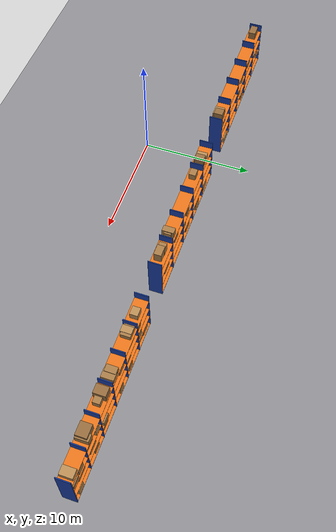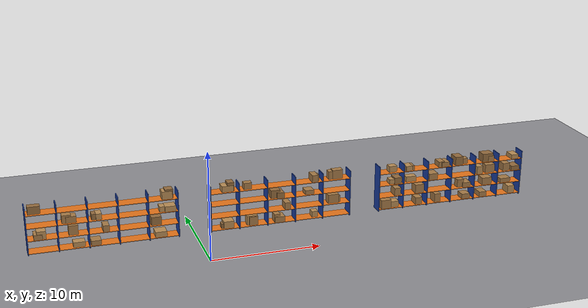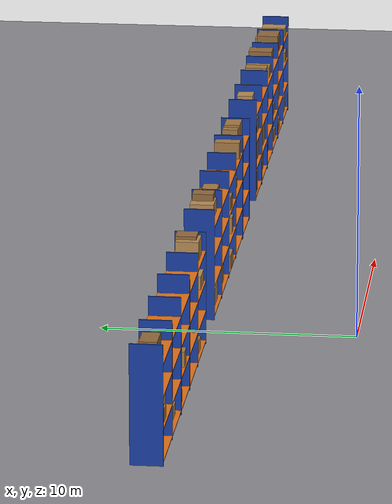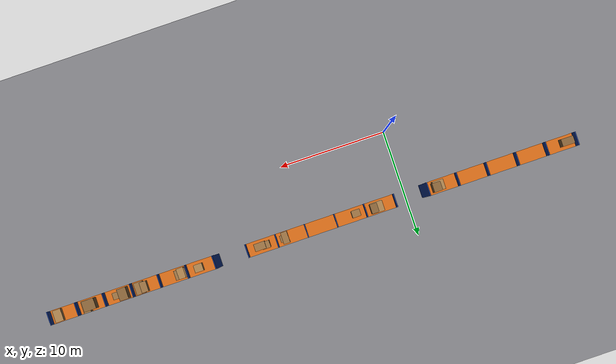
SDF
<sdf version="1.9">
 <world name="warehouse">
  <model name="ground_plane">
   <static>true</static>
   <link name="link">
    <collision name="collision">
     <geometry><plane><normal>0 0 1</normal><size>1 1</size></plane></geometry>
    </collision>
    <visual name="visual">
     <geometry><plane><normal>0 0 1</normal><size>200 100</size></plane></geometry>
     <material>
      <ambient>0.55 0.55 0.57 1</ambient>
      <diffuse>0.55 0.55 0.57 1</diffuse>
      <specular>0.1 0.1 0.1 1</specular>
     </material>
    </visual>
   </link>
  </model>
  <model name="rack21">
   <static>true</static>
   <link name="link">
    <collision name="up0_c">
     <pose>-15.000 6.300 2.250 0 0 0</pose>
     <geometry><box><size>0.080 1.200 4.500</size></box></geometry>
    </collision>
    <visual name="up0_v">
     <pose>-15.000 6.300 2.250 0 0 0</pose>
     <geometry><box><size>0.080 1.200 4.500</size></box></geometry>
     <material>
      <ambient>0.1 0.25 0.65 1</ambient>
      <diffuse>0.1 0.25 0.65 1</diffuse>
      <specular>0.1 0.1 0.1 1</specular>
     </material>
    </visual>
    <collision name="up1_c">
     <pose>-12.300 6.300 2.250 0 0 0</pose>
     <geometry><box><size>0.080 1.200 4.500</size></box></geometry>
    </collision>
    <visual name="up1_v">
     <pose>-12.300 6.300 2.250 0 0 0</pose>
     <geometry><box><size>0.080 1.200 4.500</size></box></geometry>
     <material>
      <ambient>0.1 0.25 0.65 1</ambient>
      <diffuse>0.1 0.25 0.65 1</diffuse>
      <specular>0.1 0.1 0.1 1</specular>
     </material>
    </visual>
    <collision name="up2_c">
     <pose>-9.600 6.300 2.250 0 0 0</pose>
     <geometry><box><size>0.080 1.200 4.500</size></box></geometry>
    </collision>
    <visual name="up2_v">
     <pose>-9.600 6.300 2.250 0 0 0</pose>
     <geometry><box><size>0.080 1.200 4.500</size></box></geometry>
     <material>
      <ambient>0.1 0.25 0.65 1</ambient>
      <diffuse>0.1 0.25 0.65 1</diffuse>
      <specular>0.1 0.1 0.1 1</specular>
     </material>
    </visual>
    <collision name="up3_c">
     <pose>-6.900 6.300 2.250 0 0 0</pose>
     <geometry><box><size>0.080 1.200 4.500</size></box></geometry>
    </collision>
    <visual name="up3_v">
     <pose>-6.900 6.300 2.250 0 0 0</pose>
     <geometry><box><size>0.080 1.200 4.500</size></box></geometry>
     <material>
      <ambient>0.1 0.25 0.65 1</ambient>
      <diffuse>0.1 0.25 0.65 1</diffuse>
      <specular>0.1 0.1 0.1 1</specular>
     </material>
    </visual>
    <collision name="up4_c">
     <pose>-4.200 6.300 2.250 0 0 0</pose>
     <geometry><box><size>0.080 1.200 4.500</size></box></geometry>
    </collision>
    <visual name="up4_v">
     <pose>-4.200 6.300 2.250 0 0 0</pose>
     <geometry><box><size>0.080 1.200 4.500</size></box></geometry>
     <material>
      <ambient>0.1 0.25 0.65 1</ambient>
      <diffuse>0.1 0.25 0.65 1</diffuse>
      <specular>0.1 0.1 0.1 1</specular>
     </material>
    </visual>
    <collision name="up5_c">
     <pose>-1.500 6.300 2.250 0 0 0</pose>
     <geometry><box><size>0.080 1.200 4.500</size></box></geometry>
    </collision>
    <visual name="up5_v">
     <pose>-1.500 6.300 2.250 0 0 0</pose>
     <geometry><box><size>0.080 1.200 4.500</size></box></geometry>
     <material>
      <ambient>0.1 0.25 0.65 1</ambient>
      <diffuse>0.1 0.25 0.65 1</diffuse>
      <specular>0.1 0.1 0.1 1</specular>
     </material>
    </visual>
    <collision name="sh0_c">
     <pose>-8.250 6.300 0.150 0 0 0</pose>
     <geometry><box><size>13.500 1.200 0.050</size></box></geometry>
    </collision>
    <visual name="sh0_v">
     <pose>-8.250 6.300 0.150 0 0 0</pose>
     <geometry><box><size>13.500 1.200 0.050</size></box></geometry>
     <material>
      <ambient>0.9 0.45 0.1 1</ambient>
      <diffuse>0.9 0.45 0.1 1</diffuse>
      <specular>0.1 0.1 0.1 1</specular>
     </material>
    </visual>
    <collision name="sh1_c">
     <pose>-8.250 6.300 1.350 0 0 0</pose>
     <geometry><box><size>13.500 1.200 0.050</size></box></geometry>
    </collision>
    <visual name="sh1_v">
     <pose>-8.250 6.300 1.350 0 0 0</pose>
     <geometry><box><size>13.500 1.200 0.050</size></box></geometry>
     <material>
      <ambient>0.9 0.45 0.1 1</ambient>
      <diffuse>0.9 0.45 0.1 1</diffuse>
      <specular>0.1 0.1 0.1 1</specular>
     </material>
    </visual>
    <collision name="sh2_c">
     <pose>-8.250 6.300 2.550 0 0 0</pose>
     <geometry><box><size>13.500 1.200 0.050</size></box></geometry>
    </collision>
    <visual name="sh2_v">
     <pose>-8.250 6.300 2.550 0 0 0</pose>
     <geometry><box><size>13.500 1.200 0.050</size></box></geometry>
     <material>
      <ambient>0.9 0.45 0.1 1</ambient>
      <diffuse>0.9 0.45 0.1 1</diffuse>
      <specular>0.1 0.1 0.1 1</specular>
     </material>
    </visual>
    <collision name="sh3_c">
     <pose>-8.250 6.300 3.750 0 0 0</pose>
     <geometry><box><size>13.500 1.200 0.050</size></box></geometry>
    </collision>
    <visual name="sh3_v">
     <pose>-8.250 6.300 3.750 0 0 0</pose>
     <geometry><box><size>13.500 1.200 0.050</size></box></geometry>
     <material>
      <ambient>0.9 0.45 0.1 1</ambient>
      <diffuse>0.9 0.45 0.1 1</diffuse>
      <specular>0.1 0.1 0.1 1</specular>
     </material>
    </visual>
    <collision name="c0_c">
     <pose>-13.739 6.251 1.748 0 0 0</pose>
     <geometry><box><size>0.816 0.849 0.747</size></box></geometry>
    </collision>
    <visual name="c0_v">
     <pose>-13.739 6.251 1.748 0 0 0</pose>
     <geometry><box><size>0.816 0.849 0.747</size></box></geometry>
     <material>
      <ambient>0.72 0.55 0.33 1</ambient>
      <diffuse>0.72 0.55 0.33 1</diffuse>
      <specular>0.1 0.1 0.1 1</specular>
     </material>
    </visual>
    <collision name="c1_c">
     <pose>-14.039 6.301 1.610 0 0 0</pose>
     <geometry><box><size>0.747 1.076 0.470</size></box></geometry>
    </collision>
    <visual name="c1_v">
     <pose>-14.039 6.301 1.610 0 0 0</pose>
     <geometry><box><size>0.747 1.076 0.470</size></box></geometry>
     <material>
      <ambient>0.65 0.48 0.28 1</ambient>
      <diffuse>0.65 0.48 0.28 1</diffuse>
      <specular>0.1 0.1 0.1 1</specular>
     </material>
    </visual>
    <collision name="c2_c">
     <pose>-14.195 6.268 4.135 0 0 0</pose>
     <geometry><box><size>1.097 0.656 0.719</size></box></geometry>
    </collision>
    <visual name="c2_v">
     <pose>-14.195 6.268 4.135 0 0 0</pose>
     <geometry><box><size>1.097 0.656 0.719</size></box></geometry>
     <material>
      <ambient>0.58 0.42 0.24 1</ambient>
      <diffuse>0.58 0.42 0.24 1</diffuse>
      <specular>0.1 0.1 0.1 1</specular>
     </material>
    </visual>
    <collision name="c3_c">
     <pose>-10.510 6.286 0.410 0 0 0</pose>
     <geometry><box><size>1.058 0.815 0.470</size></box></geometry>
    </collision>
    <visual name="c3_v">
     <pose>-10.510 6.286 0.410 0 0 0</pose>
     <geometry><box><size>1.058 0.815 0.470</size></box></geometry>
     <material>
      <ambient>0.72 0.55 0.33 1</ambient>
      <diffuse>0.72 0.55 0.33 1</diffuse>
      <specular>0.1 0.1 0.1 1</specular>
     </material>
    </visual>
    <collision name="c4_c">
     <pose>-10.935 6.293 1.823 0 0 0</pose>
     <geometry><box><size>0.840 0.665 0.895</size></box></geometry>
    </collision>
    <visual name="c4_v">
     <pose>-10.935 6.293 1.823 0 0 0</pose>
     <geometry><box><size>0.840 0.665 0.895</size></box></geometry>
     <material>
      <ambient>0.65 0.48 0.28 1</ambient>
      <diffuse>0.65 0.48 0.28 1</diffuse>
      <specular>0.1 0.1 0.1 1</specular>
     </material>
    </visual>
    <collision name="c5_c">
     <pose>-11.472 6.285 2.952 0 0 0</pose>
     <geometry><box><size>0.819 0.693 0.753</size></box></geometry>
    </collision>
    <visual name="c5_v">
     <pose>-11.472 6.285 2.952 0 0 0</pose>
     <geometry><box><size>0.819 0.693 0.753</size></box></geometry>
     <material>
      <ambient>0.65 0.48 0.28 1</ambient>
      <diffuse>0.65 0.48 0.28 1</diffuse>
      <specular>0.1 0.1 0.1 1</specular>
     </material>
    </visual>
    <collision name="c6_c">
     <pose>-11.084 6.329 2.878 0 0 0</pose>
     <geometry><box><size>0.926 0.863 0.605</size></box></geometry>
    </collision>
    <visual name="c6_v">
     <pose>-11.084 6.329 2.878 0 0 0</pose>
     <geometry><box><size>0.926 0.863 0.605</size></box></geometry>
     <material>
      <ambient>0.65 0.48 0.28 1</ambient>
      <diffuse>0.65 0.48 0.28 1</diffuse>
      <specular>0.1 0.1 0.1 1</specular>
     </material>
    </visual>
    <collision name="c7_c">
     <pose>-9.014 6.304 0.398 0 0 0</pose>
     <geometry><box><size>0.893 1.030 0.445</size></box></geometry>
    </collision>
    <visual name="c7_v">
     <pose>-9.014 6.304 0.398 0 0 0</pose>
     <geometry><box><size>0.893 1.030 0.445</size></box></geometry>
     <material>
      <ambient>0.65 0.48 0.28 1</ambient>
      <diffuse>0.65 0.48 0.28 1</diffuse>
      <specular>0.1 0.1 0.1 1</specular>
     </material>
    </visual>
    <collision name="c8_c">
     <pose>-8.068 6.254 1.678 0 0 0</pose>
     <geometry><box><size>0.556 1.039 0.606</size></box></geometry>
    </collision>
    <visual name="c8_v">
     <pose>-8.068 6.254 1.678 0 0 0</pose>
     <geometry><box><size>0.556 1.039 0.606</size></box></geometry>
     <material>
      <ambient>0.65 0.48 0.28 1</ambient>
      <diffuse>0.65 0.48 0.28 1</diffuse>
      <specular>0.1 0.1 0.1 1</specular>
     </material>
    </visual>
    <collision name="c9_c">
     <pose>-8.645 6.346 2.853 0 0 0</pose>
     <geometry><box><size>0.523 0.918 0.556</size></box></geometry>
    </collision>
    <visual name="c9_v">
     <pose>-8.645 6.346 2.853 0 0 0</pose>
     <geometry><box><size>0.523 0.918 0.556</size></box></geometry>
     <material>
      <ambient>0.72 0.55 0.33 1</ambient>
      <diffuse>0.72 0.55 0.33 1</diffuse>
      <specular>0.1 0.1 0.1 1</specular>
     </material>
    </visual>
    <collision name="c10_c">
     <pose>-8.940 6.345 2.849 0 0 0</pose>
     <geometry><box><size>0.684 0.792 0.547</size></box></geometry>
    </collision>
    <visual name="c10_v">
     <pose>-8.940 6.345 2.849 0 0 0</pose>
     <geometry><box><size>0.684 0.792 0.547</size></box></geometry>
     <material>
      <ambient>0.58 0.42 0.24 1</ambient>
      <diffuse>0.58 0.42 0.24 1</diffuse>
      <specular>0.1 0.1 0.1 1</specular>
     </material>
    </visual>
    <collision name="c11_c">
     <pose>-3.142 6.336 0.429 0 0 0</pose>
     <geometry><box><size>1.067 1.084 0.507</size></box></geometry>
    </collision>
    <visual name="c11_v">
     <pose>-3.142 6.336 0.429 0 0 0</pose>
     <geometry><box><size>1.067 1.084 0.507</size></box></geometry>
     <material>
      <ambient>0.72 0.55 0.33 1</ambient>
      <diffuse>0.72 0.55 0.33 1</diffuse>
      <specular>0.1 0.1 0.1 1</specular>
     </material>
    </visual>
    <collision name="c12_c">
     <pose>-3.525 6.280 1.758 0 0 0</pose>
     <geometry><box><size>0.917 0.788 0.767</size></box></geometry>
    </collision>
    <visual name="c12_v">
     <pose>-3.525 6.280 1.758 0 0 0</pose>
     <geometry><box><size>0.917 0.788 0.767</size></box></geometry>
     <material>
      <ambient>0.58 0.42 0.24 1</ambient>
      <diffuse>0.58 0.42 0.24 1</diffuse>
      <specular>0.1 0.1 0.1 1</specular>
     </material>
    </visual>
    <collision name="c13_c">
     <pose>-2.689 6.317 2.821 0 0 0</pose>
     <geometry><box><size>0.989 0.807 0.492</size></box></geometry>
    </collision>
    <visual name="c13_v">
     <pose>-2.689 6.317 2.821 0 0 0</pose>
     <geometry><box><size>0.989 0.807 0.492</size></box></geometry>
     <material>
      <ambient>0.72 0.55 0.33 1</ambient>
      <diffuse>0.72 0.55 0.33 1</diffuse>
      <specular>0.1 0.1 0.1 1</specular>
     </material>
    </visual>
    <collision name="c14_c">
     <pose>-2.220 6.251 2.830 0 0 0</pose>
     <geometry><box><size>1.006 0.964 0.511</size></box></geometry>
    </collision>
    <visual name="c14_v">
     <pose>-2.220 6.251 2.830 0 0 0</pose>
     <geometry><box><size>1.006 0.964 0.511</size></box></geometry>
     <material>
      <ambient>0.72 0.55 0.33 1</ambient>
      <diffuse>0.72 0.55 0.33 1</diffuse>
      <specular>0.1 0.1 0.1 1</specular>
     </material>
    </visual>
    <collision name="c15_c">
     <pose>-2.463 6.271 4.148 0 0 0</pose>
     <geometry><box><size>0.953 0.897 0.747</size></box></geometry>
    </collision>
    <visual name="c15_v">
     <pose>-2.463 6.271 4.148 0 0 0</pose>
     <geometry><box><size>0.953 0.897 0.747</size></box></geometry>
     <material>
      <ambient>0.72 0.55 0.33 1</ambient>
      <diffuse>0.72 0.55 0.33 1</diffuse>
      <specular>0.1 0.1 0.1 1</specular>
     </material>
    </visual>
    <collision name="c16_c">
     <pose>-2.263 6.348 4.210 0 0 0</pose>
     <geometry><box><size>0.733 0.811 0.870</size></box></geometry>
    </collision>
    <visual name="c16_v">
     <pose>-2.263 6.348 4.210 0 0 0</pose>
     <geometry><box><size>0.733 0.811 0.870</size></box></geometry>
     <material>
      <ambient>0.58 0.42 0.24 1</ambient>
      <diffuse>0.58 0.42 0.24 1</diffuse>
      <specular>0.1 0.1 0.1 1</specular>
     </material>
    </visual>
   </link>
  </model>
  <model name="rack22">
   <static>true</static>
   <link name="link">
    <collision name="up0_c">
     <pose>1.500 6.300 2.250 0 0 0</pose>
     <geometry><box><size>0.080 1.200 4.500</size></box></geometry>
    </collision>
    <visual name="up0_v">
     <pose>1.500 6.300 2.250 0 0 0</pose>
     <geometry><box><size>0.080 1.200 4.500</size></box></geometry>
     <material>
      <ambient>0.1 0.25 0.65 1</ambient>
      <diffuse>0.1 0.25 0.65 1</diffuse>
      <specular>0.1 0.1 0.1 1</specular>
     </material>
    </visual>
    <collision name="up1_c">
     <pose>4.200 6.300 2.250 0 0 0</pose>
     <geometry><box><size>0.080 1.200 4.500</size></box></geometry>
    </collision>
    <visual name="up1_v">
     <pose>4.200 6.300 2.250 0 0 0</pose>
     <geometry><box><size>0.080 1.200 4.500</size></box></geometry>
     <material>
      <ambient>0.1 0.25 0.65 1</ambient>
      <diffuse>0.1 0.25 0.65 1</diffuse>
      <specular>0.1 0.1 0.1 1</specular>
     </material>
    </visual>
    <collision name="up2_c">
     <pose>6.900 6.300 2.250 0 0 0</pose>
     <geometry><box><size>0.080 1.200 4.500</size></box></geometry>
    </collision>
    <visual name="up2_v">
     <pose>6.900 6.300 2.250 0 0 0</pose>
     <geometry><box><size>0.080 1.200 4.500</size></box></geometry>
     <material>
      <ambient>0.1 0.25 0.65 1</ambient>
      <diffuse>0.1 0.25 0.65 1</diffuse>
      <specular>0.1 0.1 0.1 1</specular>
     </material>
    </visual>
    <collision name="up3_c">
     <pose>9.600 6.300 2.250 0 0 0</pose>
     <geometry><box><size>0.080 1.200 4.500</size></box></geometry>
    </collision>
    <visual name="up3_v">
     <pose>9.600 6.300 2.250 0 0 0</pose>
     <geometry><box><size>0.080 1.200 4.500</size></box></geometry>
     <material>
      <ambient>0.1 0.25 0.65 1</ambient>
      <diffuse>0.1 0.25 0.65 1</diffuse>
      <specular>0.1 0.1 0.1 1</specular>
     </material>
    </visual>
    <collision name="up4_c">
     <pose>12.300 6.300 2.250 0 0 0</pose>
     <geometry><box><size>0.080 1.200 4.500</size></box></geometry>
    </collision>
    <visual name="up4_v">
     <pose>12.300 6.300 2.250 0 0 0</pose>
     <geometry><box><size>0.080 1.200 4.500</size></box></geometry>
     <material>
      <ambient>0.1 0.25 0.65 1</ambient>
      <diffuse>0.1 0.25 0.65 1</diffuse>
      <specular>0.1 0.1 0.1 1</specular>
     </material>
    </visual>
    <collision name="up5_c">
     <pose>15.000 6.300 2.250 0 0 0</pose>
     <geometry><box><size>0.080 1.200 4.500</size></box></geometry>
    </collision>
    <visual name="up5_v">
     <pose>15.000 6.300 2.250 0 0 0</pose>
     <geometry><box><size>0.080 1.200 4.500</size></box></geometry>
     <material>
      <ambient>0.1 0.25 0.65 1</ambient>
      <diffuse>0.1 0.25 0.65 1</diffuse>
      <specular>0.1 0.1 0.1 1</specular>
     </material>
    </visual>
    <collision name="sh0_c">
     <pose>8.250 6.300 0.150 0 0 0</pose>
     <geometry><box><size>13.500 1.200 0.050</size></box></geometry>
    </collision>
    <visual name="sh0_v">
     <pose>8.250 6.300 0.150 0 0 0</pose>
     <geometry><box><size>13.500 1.200 0.050</size></box></geometry>
     <material>
      <ambient>0.9 0.45 0.1 1</ambient>
      <diffuse>0.9 0.45 0.1 1</diffuse>
      <specular>0.1 0.1 0.1 1</specular>
     </material>
    </visual>
    <collision name="sh1_c">
     <pose>8.250 6.300 1.350 0 0 0</pose>
     <geometry><box><size>13.500 1.200 0.050</size></box></geometry>
    </collision>
    <visual name="sh1_v">
     <pose>8.250 6.300 1.350 0 0 0</pose>
     <geometry><box><size>13.500 1.200 0.050</size></box></geometry>
     <material>
      <ambient>0.9 0.45 0.1 1</ambient>
      <diffuse>0.9 0.45 0.1 1</diffuse>
      <specular>0.1 0.1 0.1 1</specular>
     </material>
    </visual>
    <collision name="sh2_c">
     <pose>8.250 6.300 2.550 0 0 0</pose>
     <geometry><box><size>13.500 1.200 0.050</size></box></geometry>
    </collision>
    <visual name="sh2_v">
     <pose>8.250 6.300 2.550 0 0 0</pose>
     <geometry><box><size>13.500 1.200 0.050</size></box></geometry>
     <material>
      <ambient>0.9 0.45 0.1 1</ambient>
      <diffuse>0.9 0.45 0.1 1</diffuse>
      <specular>0.1 0.1 0.1 1</specular>
     </material>
    </visual>
    <collision name="sh3_c">
     <pose>8.250 6.300 3.750 0 0 0</pose>
     <geometry><box><size>13.500 1.200 0.050</size></box></geometry>
    </collision>
    <visual name="sh3_v">
     <pose>8.250 6.300 3.750 0 0 0</pose>
     <geometry><box><size>13.500 1.200 0.050</size></box></geometry>
     <material>
      <ambient>0.9 0.45 0.1 1</ambient>
      <diffuse>0.9 0.45 0.1 1</diffuse>
      <specular>0.1 0.1 0.1 1</specular>
     </material>
    </visual>
    <collision name="c0_c">
     <pose>2.871 6.266 0.392 0 0 0</pose>
     <geometry><box><size>0.724 0.671 0.434</size></box></geometry>
    </collision>
    <visual name="c0_v">
     <pose>2.871 6.266 0.392 0 0 0</pose>
     <geometry><box><size>0.724 0.671 0.434</size></box></geometry>
     <material>
      <ambient>0.58 0.42 0.24 1</ambient>
      <diffuse>0.58 0.42 0.24 1</diffuse>
      <specular>0.1 0.1 0.1 1</specular>
     </material>
    </visual>
    <collision name="c1_c">
     <pose>3.191 6.316 0.511 0 0 0</pose>
     <geometry><box><size>0.966 0.980 0.672</size></box></geometry>
    </collision>
    <visual name="c1_v">
     <pose>3.191 6.316 0.511 0 0 0</pose>
     <geometry><box><size>0.966 0.980 0.672</size></box></geometry>
     <material>
      <ambient>0.72 0.55 0.33 1</ambient>
      <diffuse>0.72 0.55 0.33 1</diffuse>
      <specular>0.1 0.1 0.1 1</specular>
     </material>
    </visual>
    <collision name="c2_c">
     <pose>3.148 6.336 4.061 0 0 0</pose>
     <geometry><box><size>1.094 0.937 0.573</size></box></geometry>
    </collision>
    <visual name="c2_v">
     <pose>3.148 6.336 4.061 0 0 0</pose>
     <geometry><box><size>1.094 0.937 0.573</size></box></geometry>
     <material>
      <ambient>0.72 0.55 0.33 1</ambient>
      <diffuse>0.72 0.55 0.33 1</diffuse>
      <specular>0.1 0.1 0.1 1</specular>
     </material>
    </visual>
    <collision name="c3_c">
     <pose>3.444 6.348 4.198 0 0 0</pose>
     <geometry><box><size>0.622 0.831 0.846</size></box></geometry>
    </collision>
    <visual name="c3_v">
     <pose>3.444 6.348 4.198 0 0 0</pose>
     <geometry><box><size>0.622 0.831 0.846</size></box></geometry>
     <material>
      <ambient>0.58 0.42 0.24 1</ambient>
      <diffuse>0.58 0.42 0.24 1</diffuse>
      <specular>0.1 0.1 0.1 1</specular>
     </material>
    </visual>
    <collision name="c4_c">
     <pose>5.473 6.318 0.611 0 0 0</pose>
     <geometry><box><size>1.021 0.633 0.871</size></box></geometry>
    </collision>
    <visual name="c4_v">
     <pose>5.473 6.318 0.611 0 0 0</pose>
     <geometry><box><size>1.021 0.633 0.871</size></box></geometry>
     <material>
      <ambient>0.72 0.55 0.33 1</ambient>
      <diffuse>0.72 0.55 0.33 1</diffuse>
      <specular>0.1 0.1 0.1 1</specular>
     </material>
    </visual>
    <collision name="c5_c">
     <pose>5.565 6.341 0.585 0 0 0</pose>
     <geometry><box><size>0.811 1.010 0.819</size></box></geometry>
    </collision>
    <visual name="c5_v">
     <pose>5.565 6.341 0.585 0 0 0</pose>
     <geometry><box><size>0.811 1.010 0.819</size></box></geometry>
     <material>
      <ambient>0.65 0.48 0.28 1</ambient>
      <diffuse>0.65 0.48 0.28 1</diffuse>
      <specular>0.1 0.1 0.1 1</specular>
     </material>
    </visual>
    <collision name="c6_c">
     <pose>5.069 6.257 4.082 0 0 0</pose>
     <geometry><box><size>0.747 0.615 0.615</size></box></geometry>
    </collision>
    <visual name="c6_v">
     <pose>5.069 6.257 4.082 0 0 0</pose>
     <geometry><box><size>0.747 0.615 0.615</size></box></geometry>
     <material>
      <ambient>0.65 0.48 0.28 1</ambient>
      <diffuse>0.65 0.48 0.28 1</diffuse>
      <specular>0.1 0.1 0.1 1</specular>
     </material>
    </visual>
    <collision name="c7_c">
     <pose>8.084 6.251 0.448 0 0 0</pose>
     <geometry><box><size>0.977 1.061 0.546</size></box></geometry>
    </collision>
    <visual name="c7_v">
     <pose>8.084 6.251 0.448 0 0 0</pose>
     <geometry><box><size>0.977 1.061 0.546</size></box></geometry>
     <material>
      <ambient>0.65 0.48 0.28 1</ambient>
      <diffuse>0.65 0.48 0.28 1</diffuse>
      <specular>0.1 0.1 0.1 1</specular>
     </material>
    </visual>
    <collision name="c8_c">
     <pose>7.866 6.292 0.560 0 0 0</pose>
     <geometry><box><size>0.572 0.815 0.769</size></box></geometry>
    </collision>
    <visual name="c8_v">
     <pose>7.866 6.292 0.560 0 0 0</pose>
     <geometry><box><size>0.572 0.815 0.769</size></box></geometry>
     <material>
      <ambient>0.65 0.48 0.28 1</ambient>
      <diffuse>0.65 0.48 0.28 1</diffuse>
      <specular>0.1 0.1 0.1 1</specular>
     </material>
    </visual>
    <collision name="c9_c">
     <pose>8.861 6.261 1.705 0 0 0</pose>
     <geometry><box><size>0.558 0.986 0.659</size></box></geometry>
    </collision>
    <visual name="c9_v">
     <pose>8.861 6.261 1.705 0 0 0</pose>
     <geometry><box><size>0.558 0.986 0.659</size></box></geometry>
     <material>
      <ambient>0.65 0.48 0.28 1</ambient>
      <diffuse>0.65 0.48 0.28 1</diffuse>
      <specular>0.1 0.1 0.1 1</specular>
     </material>
    </visual>
    <collision name="c10_c">
     <pose>8.161 6.284 2.852 0 0 0</pose>
     <geometry><box><size>0.684 1.092 0.553</size></box></geometry>
    </collision>
    <visual name="c10_v">
     <pose>8.161 6.284 2.852 0 0 0</pose>
     <geometry><box><size>0.684 1.092 0.553</size></box></geometry>
     <material>
      <ambient>0.58 0.42 0.24 1</ambient>
      <diffuse>0.58 0.42 0.24 1</diffuse>
      <specular>0.1 0.1 0.1 1</specular>
     </material>
    </visual>
    <collision name="c11_c">
     <pose>7.712 6.279 2.962 0 0 0</pose>
     <geometry><box><size>0.877 0.732 0.775</size></box></geometry>
    </collision>
    <visual name="c11_v">
     <pose>7.712 6.279 2.962 0 0 0</pose>
     <geometry><box><size>0.877 0.732 0.775</size></box></geometry>
     <material>
      <ambient>0.58 0.42 0.24 1</ambient>
      <diffuse>0.58 0.42 0.24 1</diffuse>
      <specular>0.1 0.1 0.1 1</specular>
     </material>
    </visual>
    <collision name="c12_c">
     <pose>11.589 6.297 0.456 0 0 0</pose>
     <geometry><box><size>0.577 0.666 0.562</size></box></geometry>
    </collision>
    <visual name="c12_v">
     <pose>11.589 6.297 0.456 0 0 0</pose>
     <geometry><box><size>0.577 0.666 0.562</size></box></geometry>
     <material>
      <ambient>0.72 0.55 0.33 1</ambient>
      <diffuse>0.72 0.55 0.33 1</diffuse>
      <specular>0.1 0.1 0.1 1</specular>
     </material>
    </visual>
    <collision name="c13_c">
     <pose>11.016 6.296 2.781 0 0 0</pose>
     <geometry><box><size>0.826 0.906 0.412</size></box></geometry>
    </collision>
    <visual name="c13_v">
     <pose>11.016 6.296 2.781 0 0 0</pose>
     <geometry><box><size>0.826 0.906 0.412</size></box></geometry>
     <material>
      <ambient>0.65 0.48 0.28 1</ambient>
      <diffuse>0.65 0.48 0.28 1</diffuse>
      <specular>0.1 0.1 0.1 1</specular>
     </material>
    </visual>
    <collision name="c14_c">
     <pose>11.515 6.259 4.117 0 0 0</pose>
     <geometry><box><size>0.564 1.037 0.685</size></box></geometry>
    </collision>
    <visual name="c14_v">
     <pose>11.515 6.259 4.117 0 0 0</pose>
     <geometry><box><size>0.564 1.037 0.685</size></box></geometry>
     <material>
      <ambient>0.65 0.48 0.28 1</ambient>
      <diffuse>0.65 0.48 0.28 1</diffuse>
      <specular>0.1 0.1 0.1 1</specular>
     </material>
    </visual>
    <collision name="c15_c">
     <pose>11.608 6.282 4.077 0 0 0</pose>
     <geometry><box><size>0.712 0.616 0.605</size></box></geometry>
    </collision>
    <visual name="c15_v">
     <pose>11.608 6.282 4.077 0 0 0</pose>
     <geometry><box><size>0.712 0.616 0.605</size></box></geometry>
     <material>
      <ambient>0.65 0.48 0.28 1</ambient>
      <diffuse>0.65 0.48 0.28 1</diffuse>
      <specular>0.1 0.1 0.1 1</specular>
     </material>
    </visual>
    <collision name="c16_c">
     <pose>13.676 6.328 1.688 0 0 0</pose>
     <geometry><box><size>0.879 0.650 0.626</size></box></geometry>
    </collision>
    <visual name="c16_v">
     <pose>13.676 6.328 1.688 0 0 0</pose>
     <geometry><box><size>0.879 0.650 0.626</size></box></geometry>
     <material>
      <ambient>0.65 0.48 0.28 1</ambient>
      <diffuse>0.65 0.48 0.28 1</diffuse>
      <specular>0.1 0.1 0.1 1</specular>
     </material>
    </visual>
    <collision name="c17_c">
     <pose>13.432 6.328 1.803 0 0 0</pose>
     <geometry><box><size>1.040 0.812 0.855</size></box></geometry>
    </collision>
    <visual name="c17_v">
     <pose>13.432 6.328 1.803 0 0 0</pose>
     <geometry><box><size>1.040 0.812 0.855</size></box></geometry>
     <material>
      <ambient>0.65 0.48 0.28 1</ambient>
      <diffuse>0.65 0.48 0.28 1</diffuse>
      <specular>0.1 0.1 0.1 1</specular>
     </material>
    </visual>
    <collision name="c18_c">
     <pose>13.806 6.266 4.211 0 0 0</pose>
     <geometry><box><size>0.980 0.650 0.871</size></box></geometry>
    </collision>
    <visual name="c18_v">
     <pose>13.806 6.266 4.211 0 0 0</pose>
     <geometry><box><size>0.980 0.650 0.871</size></box></geometry>
     <material>
      <ambient>0.65 0.48 0.28 1</ambient>
      <diffuse>0.65 0.48 0.28 1</diffuse>
      <specular>0.1 0.1 0.1 1</specular>
     </material>
    </visual>
    <collision name="c19_c">
     <pose>13.277 6.308 4.162 0 0 0</pose>
     <geometry><box><size>0.698 0.641 0.773</size></box></geometry>
    </collision>
    <visual name="c19_v">
     <pose>13.277 6.308 4.162 0 0 0</pose>
     <geometry><box><size>0.698 0.641 0.773</size></box></geometry>
     <material>
      <ambient>0.65 0.48 0.28 1</ambient>
      <diffuse>0.65 0.48 0.28 1</diffuse>
      <specular>0.1 0.1 0.1 1</specular>
     </material>
    </visual>
   </link>
  </model>
  <model name="rack23">
   <static>true</static>
   <link name="link">
    <collision name="up0_c">
     <pose>18.000 6.300 2.250 0 0 0</pose>
     <geometry><box><size>0.080 1.200 4.500</size></box></geometry>
    </collision>
    <visual name="up0_v">
     <pose>18.000 6.300 2.250 0 0 0</pose>
     <geometry><box><size>0.080 1.200 4.500</size></box></geometry>
     <material>
      <ambient>0.1 0.25 0.65 1</ambient>
      <diffuse>0.1 0.25 0.65 1</diffuse>
      <specular>0.1 0.1 0.1 1</specular>
     </material>
    </visual>
    <collision name="up1_c">
     <pose>20.500 6.300 2.250 0 0 0</pose>
     <geometry><box><size>0.080 1.200 4.500</size></box></geometry>
    </collision>
    <visual name="up1_v">
     <pose>20.500 6.300 2.250 0 0 0</pose>
     <geometry><box><size>0.080 1.200 4.500</size></box></geometry>
     <material>
      <ambient>0.1 0.25 0.65 1</ambient>
      <diffuse>0.1 0.25 0.65 1</diffuse>
      <specular>0.1 0.1 0.1 1</specular>
     </material>
    </visual>
    <collision name="up2_c">
     <pose>23.000 6.300 2.250 0 0 0</pose>
     <geometry><box><size>0.080 1.200 4.500</size></box></geometry>
    </collision>
    <visual name="up2_v">
     <pose>23.000 6.300 2.250 0 0 0</pose>
     <geometry><box><size>0.080 1.200 4.500</size></box></geometry>
     <material>
      <ambient>0.1 0.25 0.65 1</ambient>
      <diffuse>0.1 0.25 0.65 1</diffuse>
      <specular>0.1 0.1 0.1 1</specular>
     </material>
    </visual>
    <collision name="up3_c">
     <pose>25.500 6.300 2.250 0 0 0</pose>
     <geometry><box><size>0.080 1.200 4.500</size></box></geometry>
    </collision>
    <visual name="up3_v">
     <pose>25.500 6.300 2.250 0 0 0</pose>
     <geometry><box><size>0.080 1.200 4.500</size></box></geometry>
     <material>
      <ambient>0.1 0.25 0.65 1</ambient>
      <diffuse>0.1 0.25 0.65 1</diffuse>
      <specular>0.1 0.1 0.1 1</specular>
     </material>
    </visual>
    <collision name="up4_c">
     <pose>28.000 6.300 2.250 0 0 0</pose>
     <geometry><box><size>0.080 1.200 4.500</size></box></geometry>
    </collision>
    <visual name="up4_v">
     <pose>28.000 6.300 2.250 0 0 0</pose>
     <geometry><box><size>0.080 1.200 4.500</size></box></geometry>
     <material>
      <ambient>0.1 0.25 0.65 1</ambient>
      <diffuse>0.1 0.25 0.65 1</diffuse>
      <specular>0.1 0.1 0.1 1</specular>
     </material>
    </visual>
    <collision name="up5_c">
     <pose>30.500 6.300 2.250 0 0 0</pose>
     <geometry><box><size>0.080 1.200 4.500</size></box></geometry>
    </collision>
    <visual name="up5_v">
     <pose>30.500 6.300 2.250 0 0 0</pose>
     <geometry><box><size>0.080 1.200 4.500</size></box></geometry>
     <material>
      <ambient>0.1 0.25 0.65 1</ambient>
      <diffuse>0.1 0.25 0.65 1</diffuse>
      <specular>0.1 0.1 0.1 1</specular>
     </material>
    </visual>
    <collision name="up6_c">
     <pose>33.000 6.300 2.250 0 0 0</pose>
     <geometry><box><size>0.080 1.200 4.500</size></box></geometry>
    </collision>
    <visual name="up6_v">
     <pose>33.000 6.300 2.250 0 0 0</pose>
     <geometry><box><size>0.080 1.200 4.500</size></box></geometry>
     <material>
      <ambient>0.1 0.25 0.65 1</ambient>
      <diffuse>0.1 0.25 0.65 1</diffuse>
      <specular>0.1 0.1 0.1 1</specular>
     </material>
    </visual>
    <collision name="sh0_c">
     <pose>25.500 6.300 0.150 0 0 0</pose>
     <geometry><box><size>15.000 1.200 0.050</size></box></geometry>
    </collision>
    <visual name="sh0_v">
     <pose>25.500 6.300 0.150 0 0 0</pose>
     <geometry><box><size>15.000 1.200 0.050</size></box></geometry>
     <material>
      <ambient>0.9 0.45 0.1 1</ambient>
      <diffuse>0.9 0.45 0.1 1</diffuse>
      <specular>0.1 0.1 0.1 1</specular>
     </material>
    </visual>
    <collision name="sh1_c">
     <pose>25.500 6.300 1.350 0 0 0</pose>
     <geometry><box><size>15.000 1.200 0.050</size></box></geometry>
    </collision>
    <visual name="sh1_v">
     <pose>25.500 6.300 1.350 0 0 0</pose>
     <geometry><box><size>15.000 1.200 0.050</size></box></geometry>
     <material>
      <ambient>0.9 0.45 0.1 1</ambient>
      <diffuse>0.9 0.45 0.1 1</diffuse>
      <specular>0.1 0.1 0.1 1</specular>
     </material>
    </visual>
    <collision name="sh2_c">
     <pose>25.500 6.300 2.550 0 0 0</pose>
     <geometry><box><size>15.000 1.200 0.050</size></box></geometry>
    </collision>
    <visual name="sh2_v">
     <pose>25.500 6.300 2.550 0 0 0</pose>
     <geometry><box><size>15.000 1.200 0.050</size></box></geometry>
     <material>
      <ambient>0.9 0.45 0.1 1</ambient>
      <diffuse>0.9 0.45 0.1 1</diffuse>
      <specular>0.1 0.1 0.1 1</specular>
     </material>
    </visual>
    <collision name="sh3_c">
     <pose>25.500 6.300 3.750 0 0 0</pose>
     <geometry><box><size>15.000 1.200 0.050</size></box></geometry>
    </collision>
    <visual name="sh3_v">
     <pose>25.500 6.300 3.750 0 0 0</pose>
     <geometry><box><size>15.000 1.200 0.050</size></box></geometry>
     <material>
      <ambient>0.9 0.45 0.1 1</ambient>
      <diffuse>0.9 0.45 0.1 1</diffuse>
      <specular>0.1 0.1 0.1 1</specular>
     </material>
    </visual>
    <collision name="c0_c">
     <pose>19.604 6.303 0.466 0 0 0</pose>
     <geometry><box><size>0.988 0.822 0.582</size></box></geometry>
    </collision>
    <visual name="c0_v">
     <pose>19.604 6.303 0.466 0 0 0</pose>
     <geometry><box><size>0.988 0.822 0.582</size></box></geometry>
     <material>
      <ambient>0.72 0.55 0.33 1</ambient>
      <diffuse>0.72 0.55 0.33 1</diffuse>
      <specular>0.1 0.1 0.1 1</specular>
     </material>
    </visual>
    <collision name="c1_c">
     <pose>18.780 6.268 0.608 0 0 0</pose>
     <geometry><box><size>0.985 1.018 0.867</size></box></geometry>
    </collision>
    <visual name="c1_v">
     <pose>18.780 6.268 0.608 0 0 0</pose>
     <geometry><box><size>0.985 1.018 0.867</size></box></geometry>
     <material>
      <ambient>0.65 0.48 0.28 1</ambient>
      <diffuse>0.65 0.48 0.28 1</diffuse>
      <specular>0.1 0.1 0.1 1</specular>
     </material>
    </visual>
    <collision name="c2_c">
     <pose>19.954 6.329 1.748 0 0 0</pose>
     <geometry><box><size>0.624 0.987 0.747</size></box></geometry>
    </collision>
    <visual name="c2_v">
     <pose>19.954 6.329 1.748 0 0 0</pose>
     <geometry><box><size>0.624 0.987 0.747</size></box></geometry>
     <material>
      <ambient>0.65 0.48 0.28 1</ambient>
      <diffuse>0.65 0.48 0.28 1</diffuse>
      <specular>0.1 0.1 0.1 1</specular>
     </material>
    </visual>
    <collision name="c3_c">
     <pose>19.964 6.300 2.881 0 0 0</pose>
     <geometry><box><size>0.737 0.920 0.612</size></box></geometry>
    </collision>
    <visual name="c3_v">
     <pose>19.964 6.300 2.881 0 0 0</pose>
     <geometry><box><size>0.737 0.920 0.612</size></box></geometry>
     <material>
      <ambient>0.58 0.42 0.24 1</ambient>
      <diffuse>0.58 0.42 0.24 1</diffuse>
      <specular>0.1 0.1 0.1 1</specular>
     </material>
    </visual>
    <collision name="c4_c">
     <pose>19.500 6.288 2.806 0 0 0</pose>
     <geometry><box><size>0.762 0.740 0.463</size></box></geometry>
    </collision>
    <visual name="c4_v">
     <pose>19.500 6.288 2.806 0 0 0</pose>
     <geometry><box><size>0.762 0.740 0.463</size></box></geometry>
     <material>
      <ambient>0.72 0.55 0.33 1</ambient>
      <diffuse>0.72 0.55 0.33 1</diffuse>
      <specular>0.1 0.1 0.1 1</specular>
     </material>
    </visual>
    <collision name="c5_c">
     <pose>19.446 6.317 4.073 0 0 0</pose>
     <geometry><box><size>0.764 0.678 0.595</size></box></geometry>
    </collision>
    <visual name="c5_v">
     <pose>19.446 6.317 4.073 0 0 0</pose>
     <geometry><box><size>0.764 0.678 0.595</size></box></geometry>
     <material>
      <ambient>0.72 0.55 0.33 1</ambient>
      <diffuse>0.72 0.55 0.33 1</diffuse>
      <specular>0.1 0.1 0.1 1</specular>
     </material>
    </visual>
    <collision name="c6_c">
     <pose>22.201 6.344 0.517 0 0 0</pose>
     <geometry><box><size>0.671 0.987 0.684</size></box></geometry>
    </collision>
    <visual name="c6_v">
     <pose>22.201 6.344 0.517 0 0 0</pose>
     <geometry><box><size>0.671 0.987 0.684</size></box></geometry>
     <material>
      <ambient>0.65 0.48 0.28 1</ambient>
      <diffuse>0.65 0.48 0.28 1</diffuse>
      <specular>0.1 0.1 0.1 1</specular>
     </material>
    </visual>
    <collision name="c7_c">
     <pose>22.228 6.257 1.801 0 0 0</pose>
     <geometry><box><size>0.896 0.909 0.851</size></box></geometry>
    </collision>
    <visual name="c7_v">
     <pose>22.228 6.257 1.801 0 0 0</pose>
     <geometry><box><size>0.896 0.909 0.851</size></box></geometry>
     <material>
      <ambient>0.65 0.48 0.28 1</ambient>
      <diffuse>0.65 0.48 0.28 1</diffuse>
      <specular>0.1 0.1 0.1 1</specular>
     </material>
    </visual>
    <collision name="c8_c">
     <pose>21.379 6.336 2.838 0 0 0</pose>
     <geometry><box><size>1.026 0.666 0.526</size></box></geometry>
    </collision>
    <visual name="c8_v">
     <pose>21.379 6.336 2.838 0 0 0</pose>
     <geometry><box><size>1.026 0.666 0.526</size></box></geometry>
     <material>
      <ambient>0.72 0.55 0.33 1</ambient>
      <diffuse>0.72 0.55 0.33 1</diffuse>
      <specular>0.1 0.1 0.1 1</specular>
     </material>
    </visual>
    <collision name="c9_c">
     <pose>21.045 6.262 4.015 0 0 0</pose>
     <geometry><box><size>0.620 0.943 0.479</size></box></geometry>
    </collision>
    <visual name="c9_v">
     <pose>21.045 6.262 4.015 0 0 0</pose>
     <geometry><box><size>0.620 0.943 0.479</size></box></geometry>
     <material>
      <ambient>0.72 0.55 0.33 1</ambient>
      <diffuse>0.72 0.55 0.33 1</diffuse>
      <specular>0.1 0.1 0.1 1</specular>
     </material>
    </visual>
    <collision name="c10_c">
     <pose>21.113 6.316 4.000 0 0 0</pose>
     <geometry><box><size>0.999 0.851 0.451</size></box></geometry>
    </collision>
    <visual name="c10_v">
     <pose>21.113 6.316 4.000 0 0 0</pose>
     <geometry><box><size>0.999 0.851 0.451</size></box></geometry>
     <material>
      <ambient>0.65 0.48 0.28 1</ambient>
      <diffuse>0.65 0.48 0.28 1</diffuse>
      <specular>0.1 0.1 0.1 1</specular>
     </material>
    </visual>
    <collision name="c11_c">
     <pose>24.175 6.339 0.601 0 0 0</pose>
     <geometry><box><size>0.621 1.034 0.851</size></box></geometry>
    </collision>
    <visual name="c11_v">
     <pose>24.175 6.339 0.601 0 0 0</pose>
     <geometry><box><size>0.621 1.034 0.851</size></box></geometry>
     <material>
      <ambient>0.65 0.48 0.28 1</ambient>
      <diffuse>0.65 0.48 0.28 1</diffuse>
      <specular>0.1 0.1 0.1 1</specular>
     </material>
    </visual>
    <collision name="c12_c">
     <pose>23.609 6.266 2.888 0 0 0</pose>
     <geometry><box><size>0.895 0.994 0.626</size></box></geometry>
    </collision>
    <visual name="c12_v">
     <pose>23.609 6.266 2.888 0 0 0</pose>
     <geometry><box><size>0.895 0.994 0.626</size></box></geometry>
     <material>
      <ambient>0.65 0.48 0.28 1</ambient>
      <diffuse>0.65 0.48 0.28 1</diffuse>
      <specular>0.1 0.1 0.1 1</specular>
     </material>
    </visual>
    <collision name="c13_c">
     <pose>23.689 6.276 2.812 0 0 0</pose>
     <geometry><box><size>0.874 0.612 0.474</size></box></geometry>
    </collision>
    <visual name="c13_v">
     <pose>23.689 6.276 2.812 0 0 0</pose>
     <geometry><box><size>0.874 0.612 0.474</size></box></geometry>
     <material>
      <ambient>0.58 0.42 0.24 1</ambient>
      <diffuse>0.58 0.42 0.24 1</diffuse>
      <specular>0.1 0.1 0.1 1</specular>
     </material>
    </visual>
    <collision name="c14_c">
     <pose>24.848 6.314 4.008 0 0 0</pose>
     <geometry><box><size>0.799 1.061 0.465</size></box></geometry>
    </collision>
    <visual name="c14_v">
     <pose>24.848 6.314 4.008 0 0 0</pose>
     <geometry><box><size>0.799 1.061 0.465</size></box></geometry>
     <material>
      <ambient>0.65 0.48 0.28 1</ambient>
      <diffuse>0.65 0.48 0.28 1</diffuse>
      <specular>0.1 0.1 0.1 1</specular>
     </material>
    </visual>
    <collision name="c15_c">
     <pose>24.449 6.342 4.036 0 0 0</pose>
     <geometry><box><size>0.594 0.940 0.522</size></box></geometry>
    </collision>
    <visual name="c15_v">
     <pose>24.449 6.342 4.036 0 0 0</pose>
     <geometry><box><size>0.594 0.940 0.522</size></box></geometry>
     <material>
      <ambient>0.65 0.48 0.28 1</ambient>
      <diffuse>0.65 0.48 0.28 1</diffuse>
      <specular>0.1 0.1 0.1 1</specular>
     </material>
    </visual>
    <collision name="c16_c">
     <pose>27.211 6.258 0.418 0 0 0</pose>
     <geometry><box><size>0.841 0.926 0.485</size></box></geometry>
    </collision>
    <visual name="c16_v">
     <pose>27.211 6.258 0.418 0 0 0</pose>
     <geometry><box><size>0.841 0.926 0.485</size></box></geometry>
     <material>
      <ambient>0.65 0.48 0.28 1</ambient>
      <diffuse>0.65 0.48 0.28 1</diffuse>
      <specular>0.1 0.1 0.1 1</specular>
     </material>
    </visual>
    <collision name="c17_c">
     <pose>27.232 6.349 1.610 0 0 0</pose>
     <geometry><box><size>0.827 1.061 0.470</size></box></geometry>
    </collision>
    <visual name="c17_v">
     <pose>27.232 6.349 1.610 0 0 0</pose>
     <geometry><box><size>0.827 1.061 0.470</size></box></geometry>
     <material>
      <ambient>0.65 0.48 0.28 1</ambient>
      <diffuse>0.65 0.48 0.28 1</diffuse>
      <specular>0.1 0.1 0.1 1</specular>
     </material>
    </visual>
    <collision name="c18_c">
     <pose>26.653 6.314 1.766 0 0 0</pose>
     <geometry><box><size>0.680 0.650 0.782</size></box></geometry>
    </collision>
    <visual name="c18_v">
     <pose>26.653 6.314 1.766 0 0 0</pose>
     <geometry><box><size>0.680 0.650 0.782</size></box></geometry>
     <material>
      <ambient>0.65 0.48 0.28 1</ambient>
      <diffuse>0.65 0.48 0.28 1</diffuse>
      <specular>0.1 0.1 0.1 1</specular>
     </material>
    </visual>
    <collision name="c19_c">
     <pose>26.713 6.287 4.048 0 0 0</pose>
     <geometry><box><size>1.079 0.604 0.547</size></box></geometry>
    </collision>
    <visual name="c19_v">
     <pose>26.713 6.287 4.048 0 0 0</pose>
     <geometry><box><size>1.079 0.604 0.547</size></box></geometry>
     <material>
      <ambient>0.65 0.48 0.28 1</ambient>
      <diffuse>0.65 0.48 0.28 1</diffuse>
      <specular>0.1 0.1 0.1 1</specular>
     </material>
    </visual>
    <collision name="c20_c">
     <pose>26.295 6.324 4.190 0 0 0</pose>
     <geometry><box><size>0.786 1.036 0.830</size></box></geometry>
    </collision>
    <visual name="c20_v">
     <pose>26.295 6.324 4.190 0 0 0</pose>
     <geometry><box><size>0.786 1.036 0.830</size></box></geometry>
     <material>
      <ambient>0.58 0.42 0.24 1</ambient>
      <diffuse>0.58 0.42 0.24 1</diffuse>
      <specular>0.1 0.1 0.1 1</specular>
     </material>
    </visual>
    <collision name="c21_c">
     <pose>29.042 6.273 0.425 0 0 0</pose>
     <geometry><box><size>0.760 1.049 0.499</size></box></geometry>
    </collision>
    <visual name="c21_v">
     <pose>29.042 6.273 0.425 0 0 0</pose>
     <geometry><box><size>0.760 1.049 0.499</size></box></geometry>
     <material>
      <ambient>0.65 0.48 0.28 1</ambient>
      <diffuse>0.65 0.48 0.28 1</diffuse>
      <specular>0.1 0.1 0.1 1</specular>
     </material>
    </visual>
    <collision name="c22_c">
     <pose>29.667 6.295 1.683 0 0 0</pose>
     <geometry><box><size>0.540 0.621 0.616</size></box></geometry>
    </collision>
    <visual name="c22_v">
     <pose>29.667 6.295 1.683 0 0 0</pose>
     <geometry><box><size>0.540 0.621 0.616</size></box></geometry>
     <material>
      <ambient>0.72 0.55 0.33 1</ambient>
      <diffuse>0.72 0.55 0.33 1</diffuse>
      <specular>0.1 0.1 0.1 1</specular>
     </material>
    </visual>
    <collision name="c23_c">
     <pose>29.433 6.287 1.729 0 0 0</pose>
     <geometry><box><size>1.028 0.898 0.708</size></box></geometry>
    </collision>
    <visual name="c23_v">
     <pose>29.433 6.287 1.729 0 0 0</pose>
     <geometry><box><size>1.028 0.898 0.708</size></box></geometry>
     <material>
      <ambient>0.65 0.48 0.28 1</ambient>
      <diffuse>0.65 0.48 0.28 1</diffuse>
      <specular>0.1 0.1 0.1 1</specular>
     </material>
    </visual>
    <collision name="c24_c">
     <pose>28.575 6.326 2.965 0 0 0</pose>
     <geometry><box><size>0.578 1.065 0.779</size></box></geometry>
    </collision>
    <visual name="c24_v">
     <pose>28.575 6.326 2.965 0 0 0</pose>
     <geometry><box><size>0.578 1.065 0.779</size></box></geometry>
     <material>
      <ambient>0.72 0.55 0.33 1</ambient>
      <diffuse>0.72 0.55 0.33 1</diffuse>
      <specular>0.1 0.1 0.1 1</specular>
     </material>
    </visual>
    <collision name="c25_c">
     <pose>29.729 6.314 2.984 0 0 0</pose>
     <geometry><box><size>1.003 0.764 0.817</size></box></geometry>
    </collision>
    <visual name="c25_v">
     <pose>29.729 6.314 2.984 0 0 0</pose>
     <geometry><box><size>1.003 0.764 0.817</size></box></geometry>
     <material>
      <ambient>0.65 0.48 0.28 1</ambient>
      <diffuse>0.65 0.48 0.28 1</diffuse>
      <specular>0.1 0.1 0.1 1</specular>
     </material>
    </visual>
    <collision name="c26_c">
     <pose>29.720 6.348 4.052 0 0 0</pose>
     <geometry><box><size>0.617 1.092 0.554</size></box></geometry>
    </collision>
    <visual name="c26_v">
     <pose>29.720 6.348 4.052 0 0 0</pose>
     <geometry><box><size>0.617 1.092 0.554</size></box></geometry>
     <material>
      <ambient>0.65 0.48 0.28 1</ambient>
      <diffuse>0.65 0.48 0.28 1</diffuse>
      <specular>0.1 0.1 0.1 1</specular>
     </material>
    </visual>
    <collision name="c27_c">
     <pose>29.367 6.280 4.183 0 0 0</pose>
     <geometry><box><size>1.094 0.939 0.816</size></box></geometry>
    </collision>
    <visual name="c27_v">
     <pose>29.367 6.280 4.183 0 0 0</pose>
     <geometry><box><size>1.094 0.939 0.816</size></box></geometry>
     <material>
      <ambient>0.58 0.42 0.24 1</ambient>
      <diffuse>0.58 0.42 0.24 1</diffuse>
      <specular>0.1 0.1 0.1 1</specular>
     </material>
    </visual>
    <collision name="c28_c">
     <pose>32.149 6.334 0.549 0 0 0</pose>
     <geometry><box><size>0.709 1.069 0.747</size></box></geometry>
    </collision>
    <visual name="c28_v">
     <pose>32.149 6.334 0.549 0 0 0</pose>
     <geometry><box><size>0.709 1.069 0.747</size></box></geometry>
     <material>
      <ambient>0.72 0.55 0.33 1</ambient>
      <diffuse>0.72 0.55 0.33 1</diffuse>
      <specular>0.1 0.1 0.1 1</specular>
     </material>
    </visual>
    <collision name="c29_c">
     <pose>31.435 6.270 1.590 0 0 0</pose>
     <geometry><box><size>1.083 0.900 0.431</size></box></geometry>
    </collision>
    <visual name="c29_v">
     <pose>31.435 6.270 1.590 0 0 0</pose>
     <geometry><box><size>1.083 0.900 0.431</size></box></geometry>
     <material>
      <ambient>0.65 0.48 0.28 1</ambient>
      <diffuse>0.65 0.48 0.28 1</diffuse>
      <specular>0.1 0.1 0.1 1</specular>
     </material>
    </visual>
    <collision name="c30_c">
     <pose>32.412 6.305 2.796 0 0 0</pose>
     <geometry><box><size>0.853 1.095 0.441</size></box></geometry>
    </collision>
    <visual name="c30_v">
     <pose>32.412 6.305 2.796 0 0 0</pose>
     <geometry><box><size>0.853 1.095 0.441</size></box></geometry>
     <material>
      <ambient>0.58 0.42 0.24 1</ambient>
      <diffuse>0.58 0.42 0.24 1</diffuse>
      <specular>0.1 0.1 0.1 1</specular>
     </material>
    </visual>
    <collision name="c31_c">
     <pose>31.479 6.342 2.961 0 0 0</pose>
     <geometry><box><size>0.712 0.951 0.772</size></box></geometry>
    </collision>
    <visual name="c31_v">
     <pose>31.479 6.342 2.961 0 0 0</pose>
     <geometry><box><size>0.712 0.951 0.772</size></box></geometry>
     <material>
      <ambient>0.65 0.48 0.28 1</ambient>
      <diffuse>0.65 0.48 0.28 1</diffuse>
      <specular>0.1 0.1 0.1 1</specular>
     </material>
    </visual>
    <collision name="c32_c">
     <pose>32.288 6.301 3.990 0 0 0</pose>
     <geometry><box><size>0.732 1.079 0.429</size></box></geometry>
    </collision>
    <visual name="c32_v">
     <pose>32.288 6.301 3.990 0 0 0</pose>
     <geometry><box><size>0.732 1.079 0.429</size></box></geometry>
     <material>
      <ambient>0.72 0.55 0.33 1</ambient>
      <diffuse>0.72 0.55 0.33 1</diffuse>
      <specular>0.1 0.1 0.1 1</specular>
     </material>
    </visual>
   </link>
  </model>
 </world>
</sdf>
